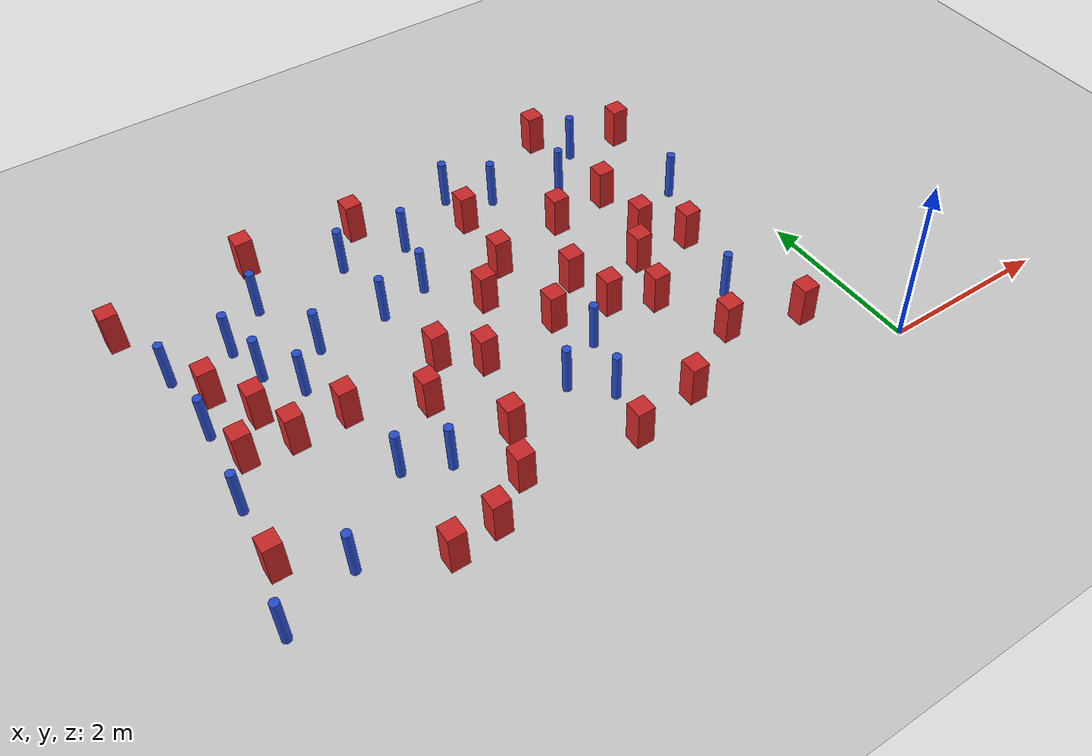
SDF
<sdf version="1.6">
 <world name="default">
  <model name="ground_plane">
   <static>1</static>
   <link name="link">
    <collision name="collision">
     <geometry><plane><normal>0 0 1</normal><size>100 100</size></plane></geometry>
     <surface><friction><ode><mu>100</mu><mu2>50</mu2></ode></friction></surface>
    </collision>
    <visual name="visual">
     <cast_shadows>0</cast_shadows>
     <geometry><plane><normal>0 0 1</normal><size>100 100</size></plane></geometry>
     <material>
      <ambient>1.0 1.0 1.0 1.0</ambient>
      <diffuse>0.8 0.8 0.8 1.0</diffuse>
      <specular>0.01 0.01 0.01 1.000000</specular>
     </material>
    </visual>
   </link>
  </model>
  <model name="square_post_obstacle0">
   <static>true</static>
   <pose>-2.0788386926 3.51990185441 1.91545236811e-07 -7.35059704564e-06 1.12565212e-07 2.39332434364e-05</pose>
   <link name="link">
    <pose>0 0 0.25 0 -0 0</pose>
    <inertial>
     <mass>100</mass>
     <inertia>
      <ixx>0.166667</ixx>
      <ixy>0</ixy>
      <ixz>0</ixz>
      <iyy>0.166667</iyy>
      <iyz>0</iyz>
      <izz>0.166667</izz>
     </inertia>
    </inertial>
    <collision name="collision"><geometry><box><size>.2 .2 .5</size></box></geometry></collision>
    <visual name="visual">
     <geometry><box><size>.2 .2 .5</size></box></geometry>
     <material>
      <script><name>Gazebo/Red</name><uri>file://media/materials/scripts/gazebo.material</uri></script>
     </material>
    </visual>
   </link>
  </model>
  <model name="square_post_obstacle5">
   <static>true</static>
   <pose>-3.15009402718 0.431172714896 1.91545236811e-07 -7.35059704564e-06 1.12565212e-07 2.39332434364e-05</pose>
   <link name="link">
    <pose>0 0 0.25 0 -0 0</pose>
    <inertial>
     <mass>100</mass>
     <inertia>
      <ixx>0.166667</ixx>
      <ixy>0</ixy>
      <ixz>0</ixz>
      <iyy>0.166667</iyy>
      <iyz>0</iyz>
      <izz>0.166667</izz>
     </inertia>
    </inertial>
    <collision name="collision"><geometry><box><size>.2 .2 .5</size></box></geometry></collision>
    <visual name="visual">
     <geometry><box><size>.2 .2 .5</size></box></geometry>
     <material>
      <script><name>Gazebo/Red</name><uri>file://media/materials/scripts/gazebo.material</uri></script>
     </material>
    </visual>
   </link>
  </model>
  <model name="square_post_obstacle15">
   <static>true</static>
   <pose>-2.97740192975 2.22756941772 1.91545236811e-07 -7.35059704564e-06 1.12565212e-07 2.39332434364e-05</pose>
   <link name="link">
    <pose>0 0 0.25 0 -0 0</pose>
    <inertial>
     <mass>100</mass>
     <inertia>
      <ixx>0.166667</ixx>
      <ixy>0</ixy>
      <ixz>0</ixz>
      <iyy>0.166667</iyy>
      <iyz>0</iyz>
      <izz>0.166667</izz>
     </inertia>
    </inertial>
    <collision name="collision"><geometry><box><size>.2 .2 .5</size></box></geometry></collision>
    <visual name="visual">
     <geometry><box><size>.2 .2 .5</size></box></geometry>
     <material>
      <script><name>Gazebo/Red</name><uri>file://media/materials/scripts/gazebo.material</uri></script>
     </material>
    </visual>
   </link>
  </model>
  <model name="pole_obstacle9">
   <static>true</static>
   <pose>-4.43777852764 3.35960975766 7.38925637345e-09 -8.47170692798e-08 1.24976764937e-08 -1.74513093023e-07</pose>
   <link name="link">
    <pose>0 0 0.3 0 -0 0</pose>
    <inertial>
     <mass>1</mass>
     <inertia><ixx>0.145833</ixx><ixy>0</ixy><ixz>0</ixz><iyy>0.145833</iyy><iyz>0</iyz><izz>0.125</izz></inertia>
    </inertial>
    <collision name="collision">
     <geometry><cylinder><radius>0.05</radius><length>.6</length></cylinder></geometry>
    </collision>
    <visual name="visual">
     <geometry><cylinder><radius>0.05</radius><length>.6</length></cylinder></geometry>
     <material>
      <script><name>Gazebo/Blue</name><uri>file://media/materials/scripts/gazebo.material</uri></script>
     </material>
    </visual>
   </link>
  </model>
  <model name="pole_obstacle12">
   <static>true</static>
   <pose>-5.60776020987 2.87340365903 7.38925637345e-09 -8.47170692798e-08 1.24976764937e-08 -1.74513093023e-07</pose>
   <link name="link">
    <pose>0 0 0.3 0 -0 0</pose>
    <inertial>
     <mass>1</mass>
     <inertia><ixx>0.145833</ixx><ixy>0</ixy><ixz>0</ixz><iyy>0.145833</iyy><iyz>0</iyz><izz>0.125</izz></inertia>
    </inertial>
    <collision name="collision">
     <geometry><cylinder><radius>0.05</radius><length>.6</length></cylinder></geometry>
    </collision>
    <visual name="visual">
     <geometry><cylinder><radius>0.05</radius><length>.6</length></cylinder></geometry>
     <material>
      <script><name>Gazebo/Blue</name><uri>file://media/materials/scripts/gazebo.material</uri></script>
     </material>
    </visual>
   </link>
  </model>
  <model name="square_post_obstacle21">
   <static>true</static>
   <pose>-1.89005795857 1.84791924567 1.91545236811e-07 -7.35059704564e-06 1.12565212e-07 2.39332434364e-05</pose>
   <link name="link">
    <pose>0 0 0.25 0 -0 0</pose>
    <inertial>
     <mass>100</mass>
     <inertia>
      <ixx>0.166667</ixx>
      <ixy>0</ixy>
      <ixz>0</ixz>
      <iyy>0.166667</iyy>
      <iyz>0</iyz>
      <izz>0.166667</izz>
     </inertia>
    </inertial>
    <collision name="collision"><geometry><box><size>.2 .2 .5</size></box></geometry></collision>
    <visual name="visual">
     <geometry><box><size>.2 .2 .5</size></box></geometry>
     <material>
      <script><name>Gazebo/Red</name><uri>file://media/materials/scripts/gazebo.material</uri></script>
     </material>
    </visual>
   </link>
  </model>
  <model name="pole_obstacle15">
   <static>true</static>
   <pose>-3.87481474693 3.49659423783 7.38925637345e-09 -8.471706928e-08 1.24976765098e-08 -1.74513093016e-07</pose>
   <link name="link">
    <pose>0 0 0.3 0 -0 0</pose>
    <inertial>
     <mass>1</mass>
     <inertia><ixx>0.145833</ixx><ixy>0</ixy><ixz>0</ixz><iyy>0.145833</iyy><iyz>0</iyz><izz>0.125</izz></inertia>
    </inertial>
    <collision name="collision">
     <geometry><cylinder><radius>0.05</radius><length>.6</length></cylinder></geometry>
    </collision>
    <visual name="visual">
     <geometry><cylinder><radius>0.05</radius><length>.6</length></cylinder></geometry>
     <material>
      <script><name>Gazebo/Blue</name><uri>file://media/materials/scripts/gazebo.material</uri></script>
     </material>
    </visual>
   </link>
  </model>
  <model name="square_post_obstacle26">
   <static>true</static>
   <pose>-5.35161694453 4.90478112747 1.91545236811e-07 -7.35059704564e-06 1.12565212e-07 2.39332434364e-05</pose>
   <link name="link">
    <pose>0 0 0.25 0 -0 0</pose>
    <inertial>
     <mass>100</mass>
     <inertia>
      <ixx>0.166667</ixx>
      <ixy>0</ixy>
      <ixz>0</ixz>
      <iyy>0.166667</iyy>
      <iyz>0</iyz>
      <izz>0.166667</izz>
     </inertia>
    </inertial>
    <collision name="collision"><geometry><box><size>.2 .2 .5</size></box></geometry></collision>
    <visual name="visual">
     <geometry><box><size>.2 .2 .5</size></box></geometry>
     <material>
      <script><name>Gazebo/Red</name><uri>file://media/materials/scripts/gazebo.material</uri></script>
     </material>
    </visual>
   </link>
  </model>
  <model name="pole_obstacle27">
   <static>true</static>
   <pose>-6.17206566814 0.665995876516 7.38925637345e-09 -8.47170692799e-08 1.24976765038e-08 -1.74513093018e-07</pose>
   <link name="link">
    <pose>0 0 0.3 0 -0 0</pose>
    <inertial>
     <mass>1</mass>
     <inertia><ixx>0.145833</ixx><ixy>0</ixy><ixz>0</ixz><iyy>0.145833</iyy><iyz>0</iyz><izz>0.125</izz></inertia>
    </inertial>
    <collision name="collision">
     <geometry><cylinder><radius>0.05</radius><length>.6</length></cylinder></geometry>
    </collision>
    <visual name="visual">
     <geometry><cylinder><radius>0.05</radius><length>.6</length></cylinder></geometry>
     <material>
      <script><name>Gazebo/Blue</name><uri>file://media/materials/scripts/gazebo.material</uri></script>
     </material>
    </visual>
   </link>
  </model>
  <model name="square_post_obstacle32">
   <static>true</static>
   <pose>-2.93864829713 4.14911817699 1.91545236811e-07 -7.35059704564e-06 1.12565212e-07 2.39332434364e-05</pose>
   <link name="link">
    <pose>0 0 0.25 0 -0 0</pose>
    <inertial>
     <mass>100</mass>
     <inertia>
      <ixx>0.166667</ixx>
      <ixy>0</ixy>
      <ixz>0</ixz>
      <iyy>0.166667</iyy>
      <iyz>0</iyz>
      <izz>0.166667</izz>
     </inertia>
    </inertial>
    <collision name="collision"><geometry><box><size>.2 .2 .5</size></box></geometry></collision>
    <visual name="visual">
     <geometry><box><size>.2 .2 .5</size></box></geometry>
     <material>
      <script><name>Gazebo/Red</name><uri>file://media/materials/scripts/gazebo.material</uri></script>
     </material>
    </visual>
   </link>
  </model>
  <model name="pole_obstacle36">
   <static>true</static>
   <pose>-3.37634958448 1.38578737526 7.38925637345e-09 -8.471706928e-08 1.24976765152e-08 -1.74513093012e-07</pose>
   <link name="link">
    <pose>0 0 0.3 0 -0 0</pose>
    <inertial>
     <mass>1</mass>
     <inertia><ixx>0.145833</ixx><ixy>0</ixy><ixz>0</ixz><iyy>0.145833</iyy><iyz>0</iyz><izz>0.125</izz></inertia>
    </inertial>
    <collision name="collision">
     <geometry><cylinder><radius>0.05</radius><length>.6</length></cylinder></geometry>
    </collision>
    <visual name="visual">
     <geometry><cylinder><radius>0.05</radius><length>.6</length></cylinder></geometry>
     <material>
      <script><name>Gazebo/Blue</name><uri>file://media/materials/scripts/gazebo.material</uri></script>
     </material>
    </visual>
   </link>
  </model>
  <model name="square_post_obstacle36">
   <static>true</static>
   <pose>-4.3939298303 0.643161265851 1.91545236811e-07 -7.35059704564e-06 1.12565212e-07 2.39332434364e-05</pose>
   <link name="link">
    <pose>0 0 0.25 0 -0 0</pose>
    <inertial>
     <mass>100</mass>
     <inertia>
      <ixx>0.166667</ixx>
      <ixy>0</ixy>
      <ixz>0</ixz>
      <iyy>0.166667</iyy>
      <iyz>0</iyz>
      <izz>0.166667</izz>
     </inertia>
    </inertial>
    <collision name="collision"><geometry><box><size>.2 .2 .5</size></box></geometry></collision>
    <visual name="visual">
     <geometry><box><size>.2 .2 .5</size></box></geometry>
     <material>
      <script><name>Gazebo/Red</name><uri>file://media/materials/scripts/gazebo.material</uri></script>
     </material>
    </visual>
   </link>
  </model>
  <model name="square_post_obstacle39">
   <static>true</static>
   <pose>-1.48181132432 4.9781287102 1.91545236811e-07 -7.35059704564e-06 1.12565212e-07 2.39332434364e-05</pose>
   <link name="link">
    <pose>0 0 0.25 0 -0 0</pose>
    <inertial>
     <mass>100</mass>
     <inertia>
      <ixx>0.166667</ixx>
      <ixy>0</ixy>
      <ixz>0</ixz>
      <iyy>0.166667</iyy>
      <iyz>0</iyz>
      <izz>0.166667</izz>
     </inertia>
    </inertial>
    <collision name="collision"><geometry><box><size>.2 .2 .5</size></box></geometry></collision>
    <visual name="visual">
     <geometry><box><size>.2 .2 .5</size></box></geometry>
     <material>
      <script><name>Gazebo/Red</name><uri>file://media/materials/scripts/gazebo.material</uri></script>
     </material>
    </visual>
   </link>
  </model>
  <model name="pole_obstacle39">
   <static>true</static>
   <pose>-2.92828843975 4.661589057 7.38925637345e-09 -8.47170692798e-08 1.24976765033e-08 -1.74513093019e-07</pose>
   <link name="link">
    <pose>0 0 0.3 0 -0 0</pose>
    <inertial>
     <mass>1</mass>
     <inertia><ixx>0.145833</ixx><ixy>0</ixy><ixz>0</ixz><iyy>0.145833</iyy><iyz>0</iyz><izz>0.125</izz></inertia>
    </inertial>
    <collision name="collision">
     <geometry><cylinder><radius>0.05</radius><length>.6</length></cylinder></geometry>
    </collision>
    <visual name="visual">
     <geometry><cylinder><radius>0.05</radius><length>.6</length></cylinder></geometry>
     <material>
      <script><name>Gazebo/Blue</name><uri>file://media/materials/scripts/gazebo.material</uri></script>
     </material>
    </visual>
   </link>
  </model>
  <model name="pole_obstacle44">
   <static>true</static>
   <pose>-4.46295803288 4.29784023895 7.38925637345e-09 -8.47170692796e-08 1.24976764786e-08 -1.74513093032e-07</pose>
   <link name="link">
    <pose>0 0 0.3 0 -0 0</pose>
    <inertial>
     <mass>1</mass>
     <inertia><ixx>0.145833</ixx><ixy>0</ixy><ixz>0</ixz><iyy>0.145833</iyy><iyz>0</iyz><izz>0.125</izz></inertia>
    </inertial>
    <collision name="collision">
     <geometry><cylinder><radius>0.05</radius><length>.6</length></cylinder></geometry>
    </collision>
    <visual name="visual">
     <geometry><cylinder><radius>0.05</radius><length>.6</length></cylinder></geometry>
     <material>
      <script><name>Gazebo/Blue</name><uri>file://media/materials/scripts/gazebo.material</uri></script>
     </material>
    </visual>
   </link>
  </model>
  <model name="square_post_obstacle46">
   <static>true</static>
   <pose>-2.37031426812 0.576771087767 1.91545236811e-07 -7.35059704564e-06 1.12565212e-07 2.39332434364e-05</pose>
   <link name="link">
    <pose>0 0 0.25 0 -0 0</pose>
    <inertial>
     <mass>100</mass>
     <inertia>
      <ixx>0.166667</ixx>
      <ixy>0</ixy>
      <ixz>0</ixz>
      <iyy>0.166667</iyy>
      <iyz>0</iyz>
      <izz>0.166667</izz>
     </inertia>
    </inertial>
    <collision name="collision"><geometry><box><size>.2 .2 .5</size></box></geometry></collision>
    <visual name="visual">
     <geometry><box><size>.2 .2 .5</size></box></geometry>
     <material>
      <script><name>Gazebo/Red</name><uri>file://media/materials/scripts/gazebo.material</uri></script>
     </material>
    </visual>
   </link>
  </model>
  <model name="square_post_obstacle56">
   <static>true</static>
   <pose>-5.97337149902 2.29753610033 1.91545236811e-07 -7.35059704564e-06 1.12565212e-07 2.39332434364e-05</pose>
   <link name="link">
    <pose>0 0 0.25 0 -0 0</pose>
    <inertial>
     <mass>100</mass>
     <inertia>
      <ixx>0.166667</ixx>
      <ixy>0</ixy>
      <ixz>0</ixz>
      <iyy>0.166667</iyy>
      <iyz>0</iyz>
      <izz>0.166667</izz>
     </inertia>
    </inertial>
    <collision name="collision"><geometry><box><size>.2 .2 .5</size></box></geometry></collision>
    <visual name="visual">
     <geometry><box><size>.2 .2 .5</size></box></geometry>
     <material>
      <script><name>Gazebo/Red</name><uri>file://media/materials/scripts/gazebo.material</uri></script>
     </material>
    </visual>
   </link>
  </model>
  <model name="pole_obstacle53">
   <static>true</static>
   <pose>-6.70213673022 3.76641503206 7.38925637345e-09 -8.47170692798e-08 1.24976764937e-08 -1.74513093023e-07</pose>
   <link name="link">
    <pose>0 0 0.3 0 -0 0</pose>
    <inertial>
     <mass>1</mass>
     <inertia><ixx>0.145833</ixx><ixy>0</ixy><ixz>0</ixz><iyy>0.145833</iyy><iyz>0</iyz><izz>0.125</izz></inertia>
    </inertial>
    <collision name="collision">
     <geometry><cylinder><radius>0.05</radius><length>.6</length></cylinder></geometry>
    </collision>
    <visual name="visual">
     <geometry><cylinder><radius>0.05</radius><length>.6</length></cylinder></geometry>
     <material>
      <script><name>Gazebo/Blue</name><uri>file://media/materials/scripts/gazebo.material</uri></script>
     </material>
    </visual>
   </link>
  </model>
  <model name="square_post_obstacle61">
   <static>true</static>
   <pose>-1.53680280742 1.05163356665 1.91545236811e-07 -7.35059704564e-06 1.12565212e-07 2.39332434364e-05</pose>
   <link name="link">
    <pose>0 0 0.25 0 -0 0</pose>
    <inertial>
     <mass>100</mass>
     <inertia>
      <ixx>0.166667</ixx>
      <ixy>0</ixy>
      <ixz>0</ixz>
      <iyy>0.166667</iyy>
      <iyz>0</iyz>
      <izz>0.166667</izz>
     </inertia>
    </inertial>
    <collision name="collision"><geometry><box><size>.2 .2 .5</size></box></geometry></collision>
    <visual name="visual">
     <geometry><box><size>.2 .2 .5</size></box></geometry>
     <material>
      <script><name>Gazebo/Red</name><uri>file://media/materials/scripts/gazebo.material</uri></script>
     </material>
    </visual>
   </link>
  </model>
  <model name="pole_obstacle58">
   <static>true</static>
   <pose>-1.67661485518 4.09693031619 7.38925637345e-09 -8.47170692799e-08 1.24976765033e-08 -1.74513093018e-07</pose>
   <link name="link">
    <pose>0 0 0.3 0 -0 0</pose>
    <inertial>
     <mass>1</mass>
     <inertia><ixx>0.145833</ixx><ixy>0</ixy><ixz>0</ixz><iyy>0.145833</iyy><iyz>0</iyz><izz>0.125</izz></inertia>
    </inertial>
    <collision name="collision">
     <geometry><cylinder><radius>0.05</radius><length>.6</length></cylinder></geometry>
    </collision>
    <visual name="visual">
     <geometry><cylinder><radius>0.05</radius><length>.6</length></cylinder></geometry>
     <material>
      <script><name>Gazebo/Blue</name><uri>file://media/materials/scripts/gazebo.material</uri></script>
     </material>
    </visual>
   </link>
  </model>
  <model name="pole_obstacle62">
   <static>true</static>
   <pose>-6.97689643283 0.389306891371 7.38925637345e-09 -8.47170692798e-08 1.24976765003e-08 -1.7451309302e-07</pose>
   <link name="link">
    <pose>0 0 0.3 0 -0 0</pose>
    <inertial>
     <mass>1</mass>
     <inertia><ixx>0.145833</ixx><ixy>0</ixy><ixz>0</ixz><iyy>0.145833</iyy><iyz>0</iyz><izz>0.125</izz></inertia>
    </inertial>
    <collision name="collision">
     <geometry><cylinder><radius>0.05</radius><length>.6</length></cylinder></geometry>
    </collision>
    <visual name="visual">
     <geometry><cylinder><radius>0.05</radius><length>.6</length></cylinder></geometry>
     <material>
      <script><name>Gazebo/Blue</name><uri>file://media/materials/scripts/gazebo.material</uri></script>
     </material>
    </visual>
   </link>
  </model>
  <model name="square_post_obstacle73">
   <static>true</static>
   <pose>-6.47840363882 2.37284517514 1.91545236811e-07 -7.35059704564e-06 1.12565212e-07 2.39332434364e-05</pose>
   <link name="link">
    <pose>0 0 0.25 0 -0 0</pose>
    <inertial>
     <mass>100</mass>
     <inertia>
      <ixx>0.166667</ixx>
      <ixy>0</ixy>
      <ixz>0</ixz>
      <iyy>0.166667</iyy>
      <iyz>0</iyz>
      <izz>0.166667</izz>
     </inertia>
    </inertial>
    <collision name="collision"><geometry><box><size>.2 .2 .5</size></box></geometry></collision>
    <visual name="visual">
     <geometry><box><size>.2 .2 .5</size></box></geometry>
     <material>
      <script><name>Gazebo/Red</name><uri>file://media/materials/scripts/gazebo.material</uri></script>
     </material>
    </visual>
   </link>
  </model>
  <model name="square_post_obstacle74">
   <static>true</static>
   <pose>-4.28874255128 2.44807260338 1.91545236811e-07 -7.35059704564e-06 1.12565212e-07 2.39332434364e-05</pose>
   <link name="link">
    <pose>0 0 0.25 0 -0 0</pose>
    <inertial>
     <mass>100</mass>
     <inertia>
      <ixx>0.166667</ixx>
      <ixy>0</ixy>
      <ixz>0</ixz>
      <iyy>0.166667</iyy>
      <iyz>0</iyz>
      <izz>0.166667</izz>
     </inertia>
    </inertial>
    <collision name="collision"><geometry><box><size>.2 .2 .5</size></box></geometry></collision>
    <visual name="visual">
     <geometry><box><size>.2 .2 .5</size></box></geometry>
     <material>
      <script><name>Gazebo/Red</name><uri>file://media/materials/scripts/gazebo.material</uri></script>
     </material>
    </visual>
   </link>
  </model>
  <model name="pole_obstacle75">
   <static>true</static>
   <pose>-5.52735862987 4.21523077751 7.38925637345e-09 -8.47170692796e-08 1.24976764786e-08 -1.74513093032e-07</pose>
   <link name="link">
    <pose>0 0 0.3 0 -0 0</pose>
    <inertial>
     <mass>1</mass>
     <inertia><ixx>0.145833</ixx><ixy>0</ixy><ixz>0</ixz><iyy>0.145833</iyy><iyz>0</iyz><izz>0.125</izz></inertia>
    </inertial>
    <collision name="collision">
     <geometry><cylinder><radius>0.05</radius><length>.6</length></cylinder></geometry>
    </collision>
    <visual name="visual">
     <geometry><cylinder><radius>0.05</radius><length>.6</length></cylinder></geometry>
     <material>
      <script><name>Gazebo/Blue</name><uri>file://media/materials/scripts/gazebo.material</uri></script>
     </material>
    </visual>
   </link>
  </model>
  <model name="square_post_obstacle79">
   <static>true</static>
   <pose>-0.54347139013 4.50416707764 1.91545236811e-07 -7.35059704564e-06 1.12565212e-07 2.39332434364e-05</pose>
   <link name="link">
    <pose>0 0 0.25 0 -0 0</pose>
    <inertial>
     <mass>100</mass>
     <inertia>
      <ixx>0.166667</ixx>
      <ixy>0</ixy>
      <ixz>0</ixz>
      <iyy>0.166667</iyy>
      <iyz>0</iyz>
      <izz>0.166667</izz>
     </inertia>
    </inertial>
    <collision name="collision"><geometry><box><size>.2 .2 .5</size></box></geometry></collision>
    <visual name="visual">
     <geometry><box><size>.2 .2 .5</size></box></geometry>
     <material>
      <script><name>Gazebo/Red</name><uri>file://media/materials/scripts/gazebo.material</uri></script>
     </material>
    </visual>
   </link>
  </model>
  <model name="pole_obstacle89">
   <static>true</static>
   <pose>-5.30793893598 1.3982674629 7.38925637345e-09 -8.471706928e-08 1.24976765134e-08 -1.74513093015e-07</pose>
   <link name="link">
    <pose>0 0 0.3 0 -0 0</pose>
    <inertial>
     <mass>1</mass>
     <inertia><ixx>0.145833</ixx><ixy>0</ixy><ixz>0</ixz><iyy>0.145833</iyy><iyz>0</iyz><izz>0.125</izz></inertia>
    </inertial>
    <collision name="collision">
     <geometry><cylinder><radius>0.05</radius><length>.6</length></cylinder></geometry>
    </collision>
    <visual name="visual">
     <geometry><cylinder><radius>0.05</radius><length>.6</length></cylinder></geometry>
     <material>
      <script><name>Gazebo/Blue</name><uri>file://media/materials/scripts/gazebo.material</uri></script>
     </material>
    </visual>
   </link>
  </model>
  <model name="pole_obstacle95">
   <static>true</static>
   <pose>-3.02015909037 1.01647949326 7.38925637345e-09 -8.47170692793e-08 1.2497676438e-08 -1.74513093043e-07</pose>
   <link name="link">
    <pose>0 0 0.3 0 -0 0</pose>
    <inertial>
     <mass>1</mass>
     <inertia><ixx>0.145833</ixx><ixy>0</ixy><ixz>0</ixz><iyy>0.145833</iyy><iyz>0</iyz><izz>0.125</izz></inertia>
    </inertial>
    <collision name="collision">
     <geometry><cylinder><radius>0.05</radius><length>.6</length></cylinder></geometry>
    </collision>
    <visual name="visual">
     <geometry><cylinder><radius>0.05</radius><length>.6</length></cylinder></geometry>
     <material>
      <script><name>Gazebo/Blue</name><uri>file://media/materials/scripts/gazebo.material</uri></script>
     </material>
    </visual>
   </link>
  </model>
  <model name="square_post_obstacle85">
   <static>true</static>
   <pose>-4.08175941229 4.76768794901 1.91545236811e-07 -7.35059704564e-06 1.12565212e-07 2.39332434364e-05</pose>
   <link name="link">
    <pose>0 0 0.25 0 -0 0</pose>
    <inertial>
     <mass>100</mass>
     <inertia>
      <ixx>0.166667</ixx>
      <ixy>0</ixy>
      <ixz>0</ixz>
      <iyy>0.166667</iyy>
      <iyz>0</iyz>
      <izz>0.166667</izz>
     </inertia>
    </inertial>
    <collision name="collision"><geometry><box><size>.2 .2 .5</size></box></geometry></collision>
    <visual name="visual">
     <geometry><box><size>.2 .2 .5</size></box></geometry>
     <material>
      <script><name>Gazebo/Red</name><uri>file://media/materials/scripts/gazebo.material</uri></script>
     </material>
    </visual>
   </link>
  </model>
  <model name="square_post_obstacle90">
   <static>true</static>
   <pose>-1.37208795451 3.62086848564 1.91545236811e-07 -7.35059704564e-06 1.12565212e-07 2.39332434364e-05</pose>
   <link name="link">
    <pose>0 0 0.25 0 -0 0</pose>
    <inertial>
     <mass>100</mass>
     <inertia>
      <ixx>0.166667</ixx>
      <ixy>0</ixy>
      <ixz>0</ixz>
      <iyy>0.166667</iyy>
      <iyz>0</iyz>
      <izz>0.166667</izz>
     </inertia>
    </inertial>
    <collision name="collision"><geometry><box><size>.2 .2 .5</size></box></geometry></collision>
    <visual name="visual">
     <geometry><box><size>.2 .2 .5</size></box></geometry>
     <material>
      <script><name>Gazebo/Red</name><uri>file://media/materials/scripts/gazebo.material</uri></script>
     </material>
    </visual>
   </link>
  </model>
  <model name="square_post_obstacle101">
   <static>true</static>
   <pose>-0.708535437977 0.791151154313 1.91545236811e-07 -7.35059704564e-06 1.12565212e-07 2.39332434364e-05</pose>
   <link name="link">
    <pose>0 0 0.25 0 -0 0</pose>
    <inertial>
     <mass>100</mass>
     <inertia>
      <ixx>0.166667</ixx>
      <ixy>0</ixy>
      <ixz>0</ixz>
      <iyy>0.166667</iyy>
      <iyz>0</iyz>
      <izz>0.166667</izz>
     </inertia>
    </inertial>
    <collision name="collision"><geometry><box><size>.2 .2 .5</size></box></geometry></collision>
    <visual name="visual">
     <geometry><box><size>.2 .2 .5</size></box></geometry>
     <material>
      <script><name>Gazebo/Red</name><uri>file://media/materials/scripts/gazebo.material</uri></script>
     </material>
    </visual>
   </link>
  </model>
  <model name="square_post_obstacle108">
   <static>true</static>
   <pose>-5.39723187414 2.30531666637 1.91545236811e-07 -7.35059704564e-06 1.12565212e-07 2.39332434364e-05</pose>
   <link name="link">
    <pose>0 0 0.25 0 -0 0</pose>
    <inertial>
     <mass>100</mass>
     <inertia>
      <ixx>0.166667</ixx>
      <ixy>0</ixy>
      <ixz>0</ixz>
      <iyy>0.166667</iyy>
      <iyz>0</iyz>
      <izz>0.166667</izz>
     </inertia>
    </inertial>
    <collision name="collision"><geometry><box><size>.2 .2 .5</size></box></geometry></collision>
    <visual name="visual">
     <geometry><box><size>.2 .2 .5</size></box></geometry>
     <material>
      <script><name>Gazebo/Red</name><uri>file://media/materials/scripts/gazebo.material</uri></script>
     </material>
    </visual>
   </link>
  </model>
  <model name="pole_obstacle120">
   <static>true</static>
   <pose>-1.17079956065 1.54534362305 7.38925637345e-09 -8.471706928e-08 1.24976765079e-08 -1.74513093017e-07</pose>
   <link name="link">
    <pose>0 0 0.3 0 -0 0</pose>
    <inertial>
     <mass>1</mass>
     <inertia><ixx>0.145833</ixx><ixy>0</ixy><ixz>0</ixz><iyy>0.145833</iyy><iyz>0</iyz><izz>0.125</izz></inertia>
    </inertial>
    <collision name="collision">
     <geometry><cylinder><radius>0.05</radius><length>.6</length></cylinder></geometry>
    </collision>
    <visual name="visual">
     <geometry><cylinder><radius>0.05</radius><length>.6</length></cylinder></geometry>
     <material>
      <script><name>Gazebo/Blue</name><uri>file://media/materials/scripts/gazebo.material</uri></script>
     </material>
    </visual>
   </link>
  </model>
  <model name="pole_obstacle129">
   <static>true</static>
   <pose>-2.79904458776 1.73741173341 7.38925637345e-09 -8.471706928e-08 1.24976765152e-08 -1.74513093012e-07</pose>
   <link name="link">
    <pose>0 0 0.3 0 -0 0</pose>
    <inertial>
     <mass>1</mass>
     <inertia><ixx>0.145833</ixx><ixy>0</ixy><ixz>0</ixz><iyy>0.145833</iyy><iyz>0</iyz><izz>0.125</izz></inertia>
    </inertial>
    <collision name="collision">
     <geometry><cylinder><radius>0.05</radius><length>.6</length></cylinder></geometry>
    </collision>
    <visual name="visual">
     <geometry><cylinder><radius>0.05</radius><length>.6</length></cylinder></geometry>
     <material>
      <script><name>Gazebo/Blue</name><uri>file://media/materials/scripts/gazebo.material</uri></script>
     </material>
    </visual>
   </link>
  </model>
  <model name="pole_obstacle131">
   <static>true</static>
   <pose>-4.84546187899 1.18723279436 7.38925637345e-09 -8.471706928e-08 1.24976765134e-08 -1.74513093015e-07</pose>
   <link name="link">
    <pose>0 0 0.3 0 -0 0</pose>
    <inertial>
     <mass>1</mass>
     <inertia><ixx>0.145833</ixx><ixy>0</ixy><ixz>0</ixz><iyy>0.145833</iyy><iyz>0</iyz><izz>0.125</izz></inertia>
    </inertial>
    <collision name="collision">
     <geometry><cylinder><radius>0.05</radius><length>.6</length></cylinder></geometry>
    </collision>
    <visual name="visual">
     <geometry><cylinder><radius>0.05</radius><length>.6</length></cylinder></geometry>
     <material>
      <script><name>Gazebo/Blue</name><uri>file://media/materials/scripts/gazebo.material</uri></script>
     </material>
    </visual>
   </link>
  </model>
  <model name="pole_obstacle132">
   <static>true</static>
   <pose>-6.01234559861 3.79820238406 7.38925637345e-09 -8.47170692798e-08 1.24976764937e-08 -1.74513093023e-07</pose>
   <link name="link">
    <pose>0 0 0.3 0 -0 0</pose>
    <inertial>
     <mass>1</mass>
     <inertia><ixx>0.145833</ixx><ixy>0</ixy><ixz>0</ixz><iyy>0.145833</iyy><iyz>0</iyz><izz>0.125</izz></inertia>
    </inertial>
    <collision name="collision">
     <geometry><cylinder><radius>0.05</radius><length>.6</length></cylinder></geometry>
    </collision>
    <visual name="visual">
     <geometry><cylinder><radius>0.05</radius><length>.6</length></cylinder></geometry>
     <material>
      <script><name>Gazebo/Blue</name><uri>file://media/materials/scripts/gazebo.material</uri></script>
     </material>
    </visual>
   </link>
  </model>
  <model name="pole_obstacle133">
   <static>true</static>
   <pose>-3.72057758667 4.20567666945 7.38925637345e-09 -8.47170692798e-08 1.24976765033e-08 -1.74513093019e-07</pose>
   <link name="link">
    <pose>0 0 0.3 0 -0 0</pose>
    <inertial>
     <mass>1</mass>
     <inertia><ixx>0.145833</ixx><ixy>0</ixy><ixz>0</ixz><iyy>0.145833</iyy><iyz>0</iyz><izz>0.125</izz></inertia>
    </inertial>
    <collision name="collision">
     <geometry><cylinder><radius>0.05</radius><length>.6</length></cylinder></geometry>
    </collision>
    <visual name="visual">
     <geometry><cylinder><radius>0.05</radius><length>.6</length></cylinder></geometry>
     <material>
      <script><name>Gazebo/Blue</name><uri>file://media/materials/scripts/gazebo.material</uri></script>
     </material>
    </visual>
   </link>
  </model>
  <model name="square_post_obstacle126">
   <static>true</static>
   <pose>-4.65552211117 1.96336725288 1.91545236811e-07 -7.35059704564e-06 1.12565212e-07 2.39332434364e-05</pose>
   <link name="link">
    <pose>0 0 0.25 0 -0 0</pose>
    <inertial>
     <mass>100</mass>
     <inertia>
      <ixx>0.166667</ixx>
      <ixy>0</ixy>
      <ixz>0</ixz>
      <iyy>0.166667</iyy>
      <iyz>0</iyz>
      <izz>0.166667</izz>
     </inertia>
    </inertial>
    <collision name="collision"><geometry><box><size>.2 .2 .5</size></box></geometry></collision>
    <visual name="visual">
     <geometry><box><size>.2 .2 .5</size></box></geometry>
     <material>
      <script><name>Gazebo/Red</name><uri>file://media/materials/scripts/gazebo.material</uri></script>
     </material>
    </visual>
   </link>
  </model>
  <model name="square_post_obstacle127">
   <static>true</static>
   <pose>-6.75400870095 1.06617255713 1.91545236811e-07 -7.35059704564e-06 1.12565212e-07 2.39332434364e-05</pose>
   <link name="link">
    <pose>0 0 0.25 0 -0 0</pose>
    <inertial>
     <mass>100</mass>
     <inertia>
      <ixx>0.166667</ixx>
      <ixy>0</ixy>
      <ixz>0</ixz>
      <iyy>0.166667</iyy>
      <iyz>0</iyz>
      <izz>0.166667</izz>
     </inertia>
    </inertial>
    <collision name="collision"><geometry><box><size>.2 .2 .5</size></box></geometry></collision>
    <visual name="visual">
     <geometry><box><size>.2 .2 .5</size></box></geometry>
     <material>
      <script><name>Gazebo/Red</name><uri>file://media/materials/scripts/gazebo.material</uri></script>
     </material>
    </visual>
   </link>
  </model>
  <model name="pole_obstacle142">
   <static>true</static>
   <pose>-1.20869760824 4.54574290457 7.38925637345e-09 -8.47170692799e-08 1.24976765033e-08 -1.74513093018e-07</pose>
   <link name="link">
    <pose>0 0 0.3 0 -0 0</pose>
    <inertial>
     <mass>1</mass>
     <inertia><ixx>0.145833</ixx><ixy>0</ixy><ixz>0</ixz><iyy>0.145833</iyy><iyz>0</iyz><izz>0.125</izz></inertia>
    </inertial>
    <collision name="collision">
     <geometry><cylinder><radius>0.05</radius><length>.6</length></cylinder></geometry>
    </collision>
    <visual name="visual">
     <geometry><cylinder><radius>0.05</radius><length>.6</length></cylinder></geometry>
     <material>
      <script><name>Gazebo/Blue</name><uri>file://media/materials/scripts/gazebo.material</uri></script>
     </material>
    </visual>
   </link>
  </model>
  <model name="square_post_obstacle146">
   <static>true</static>
   <pose>-1.67462087841 2.467965764 1.91545236811e-07 -7.35059704564e-06 1.12565212e-07 2.39332434364e-05</pose>
   <link name="link">
    <pose>0 0 0.25 0 -0 0</pose>
    <inertial>
     <mass>100</mass>
     <inertia>
      <ixx>0.166667</ixx>
      <ixy>0</ixy>
      <ixz>0</ixz>
      <iyy>0.166667</iyy>
      <iyz>0</iyz>
      <izz>0.166667</izz>
     </inertia>
    </inertial>
    <collision name="collision"><geometry><box><size>.2 .2 .5</size></box></geometry></collision>
    <visual name="visual">
     <geometry><box><size>.2 .2 .5</size></box></geometry>
     <material>
      <script><name>Gazebo/Red</name><uri>file://media/materials/scripts/gazebo.material</uri></script>
     </material>
    </visual>
   </link>
  </model>
  <model name="pole_obstacle162">
   <static>true</static>
   <pose>-6.7421640012 1.85503573863 7.38925637345e-09 -8.471706928e-08 1.24976765134e-08 -1.74513093015e-07</pose>
   <link name="link">
    <pose>0 0 0.3 0 -0 0</pose>
    <inertial>
     <mass>1</mass>
     <inertia><ixx>0.145833</ixx><ixy>0</ixy><ixz>0</ixz><iyy>0.145833</iyy><iyz>0</iyz><izz>0.125</izz></inertia>
    </inertial>
    <collision name="collision">
     <geometry><cylinder><radius>0.05</radius><length>.6</length></cylinder></geometry>
    </collision>
    <visual name="visual">
     <geometry><cylinder><radius>0.05</radius><length>.6</length></cylinder></geometry>
     <material>
      <script><name>Gazebo/Blue</name><uri>file://media/materials/scripts/gazebo.material</uri></script>
     </material>
    </visual>
   </link>
  </model>
  <model name="square_post_obstacle155">
   <static>true</static>
   <pose>-3.8990983684 2.1161956469 1.91545236811e-07 -7.35059704564e-06 1.12565212e-07 2.39332434364e-05</pose>
   <link name="link">
    <pose>0 0 0.25 0 -0 0</pose>
    <inertial>
     <mass>100</mass>
     <inertia>
      <ixx>0.166667</ixx>
      <ixy>0</ixy>
      <ixz>0</ixz>
      <iyy>0.166667</iyy>
      <iyz>0</iyz>
      <izz>0.166667</izz>
     </inertia>
    </inertial>
    <collision name="collision"><geometry><box><size>.2 .2 .5</size></box></geometry></collision>
    <visual name="visual">
     <geometry><box><size>.2 .2 .5</size></box></geometry>
     <material>
      <script><name>Gazebo/Red</name><uri>file://media/materials/scripts/gazebo.material</uri></script>
     </material>
    </visual>
   </link>
  </model>
  <model name="square_post_obstacle161">
   <static>true</static>
   <pose>-3.00717697945 3.28352042696 1.91545236811e-07 -7.35059704564e-06 1.12565212e-07 2.39332434364e-05</pose>
   <link name="link">
    <pose>0 0 0.25 0 -0 0</pose>
    <inertial>
     <mass>100</mass>
     <inertia>
      <ixx>0.166667</ixx>
      <ixy>0</ixy>
      <ixz>0</ixz>
      <iyy>0.166667</iyy>
      <iyz>0</iyz>
      <izz>0.166667</izz>
     </inertia>
    </inertial>
    <collision name="collision"><geometry><box><size>.2 .2 .5</size></box></geometry></collision>
    <visual name="visual">
     <geometry><box><size>.2 .2 .5</size></box></geometry>
     <material>
      <script><name>Gazebo/Red</name><uri>file://media/materials/scripts/gazebo.material</uri></script>
     </material>
    </visual>
   </link>
  </model>
  <model name="pole_obstacle173">
   <static>true</static>
   <pose>-0.636032532693 3.2640355186 7.38925637345e-09 -8.47170692799e-08 1.2497676509e-08 -1.74513093016e-07</pose>
   <link name="link">
    <pose>0 0 0.3 0 -0 0</pose>
    <inertial>
     <mass>1</mass>
     <inertia><ixx>0.145833</ixx><ixy>0</ixy><ixz>0</ixz><iyy>0.145833</iyy><iyz>0</iyz><izz>0.125</izz></inertia>
    </inertial>
    <collision name="collision">
     <geometry><cylinder><radius>0.05</radius><length>.6</length></cylinder></geometry>
    </collision>
    <visual name="visual">
     <geometry><cylinder><radius>0.05</radius><length>.6</length></cylinder></geometry>
     <material>
      <script><name>Gazebo/Blue</name><uri>file://media/materials/scripts/gazebo.material</uri></script>
     </material>
    </visual>
   </link>
  </model>
  <model name="pole_obstacle177">
   <static>true</static>
   <pose>-6.64544928781 2.87679753551 7.38925637345e-09 -8.47170692798e-08 1.24976764937e-08 -1.74513093023e-07</pose>
   <link name="link">
    <pose>0 0 0.3 0 -0 0</pose>
    <inertial>
     <mass>1</mass>
     <inertia><ixx>0.145833</ixx><ixy>0</ixy><ixz>0</ixz><iyy>0.145833</iyy><iyz>0</iyz><izz>0.125</izz></inertia>
    </inertial>
    <collision name="collision">
     <geometry><cylinder><radius>0.05</radius><length>.6</length></cylinder></geometry>
    </collision>
    <visual name="visual">
     <geometry><cylinder><radius>0.05</radius><length>.6</length></cylinder></geometry>
     <material>
      <script><name>Gazebo/Blue</name><uri>file://media/materials/scripts/gazebo.material</uri></script>
     </material>
    </visual>
   </link>
  </model>
  <model name="square_post_obstacle167">
   <static>true</static>
   <pose>-1.36422824304 2.8746205803 1.91545236811e-07 -7.35059704564e-06 1.12565212e-07 2.39332434364e-05</pose>
   <link name="link">
    <pose>0 0 0.25 0 -0 0</pose>
    <inertial>
     <mass>100</mass>
     <inertia>
      <ixx>0.166667</ixx>
      <ixy>0</ixy>
      <ixz>0</ixz>
      <iyy>0.166667</iyy>
      <iyz>0</iyz>
      <izz>0.166667</izz>
     </inertia>
    </inertial>
    <collision name="collision"><geometry><box><size>.2 .2 .5</size></box></geometry></collision>
    <visual name="visual">
     <geometry><box><size>.2 .2 .5</size></box></geometry>
     <material>
      <script><name>Gazebo/Red</name><uri>file://media/materials/scripts/gazebo.material</uri></script>
     </material>
    </visual>
   </link>
  </model>
  <model name="square_post_obstacle175">
   <static>true</static>
   <pose>-6.96517859938 4.63332978877 1.91545236811e-07 -7.35059704564e-06 1.12565212e-07 2.39332434364e-05</pose>
   <link name="link">
    <pose>0 0 0.25 0 -0 0</pose>
    <inertial>
     <mass>100</mass>
     <inertia>
      <ixx>0.166667</ixx>
      <ixy>0</ixy>
      <ixz>0</ixz>
      <iyy>0.166667</iyy>
      <iyz>0</iyz>
      <izz>0.166667</izz>
     </inertia>
    </inertial>
    <collision name="collision"><geometry><box><size>.2 .2 .5</size></box></geometry></collision>
    <visual name="visual">
     <geometry><box><size>.2 .2 .5</size></box></geometry>
     <material>
      <script><name>Gazebo/Red</name><uri>file://media/materials/scripts/gazebo.material</uri></script>
     </material>
    </visual>
   </link>
  </model>
  <model name="square_post_obstacle177">
   <static>true</static>
   <pose>-2.34962683657 2.09283470662 1.91545236811e-07 -7.35059704564e-06 1.12565212e-07 2.39332434364e-05</pose>
   <link name="link">
    <pose>0 0 0.25 0 -0 0</pose>
    <inertial>
     <mass>100</mass>
     <inertia>
      <ixx>0.166667</ixx>
      <ixy>0</ixy>
      <ixz>0</ixz>
      <iyy>0.166667</iyy>
      <iyz>0</iyz>
      <izz>0.166667</izz>
     </inertia>
    </inertial>
    <collision name="collision"><geometry><box><size>.2 .2 .5</size></box></geometry></collision>
    <visual name="visual">
     <geometry><box><size>.2 .2 .5</size></box></geometry>
     <material>
      <script><name>Gazebo/Red</name><uri>file://media/materials/scripts/gazebo.material</uri></script>
     </material>
    </visual>
   </link>
  </model>
  <model name="square_post_obstacle183">
   <static>true</static>
   <pose>-0.987687059492 2.47406746747 1.91545236811e-07 -7.35059704564e-06 1.12565212e-07 2.39332434364e-05</pose>
   <link name="link">
    <pose>0 0 0.25 0 -0 0</pose>
    <inertial>
     <mass>100</mass>
     <inertia>
      <ixx>0.166667</ixx>
      <ixy>0</ixy>
      <ixz>0</ixz>
      <iyy>0.166667</iyy>
      <iyz>0</iyz>
      <izz>0.166667</izz>
     </inertia>
    </inertial>
    <collision name="collision"><geometry><box><size>.2 .2 .5</size></box></geometry></collision>
    <visual name="visual">
     <geometry><box><size>.2 .2 .5</size></box></geometry>
     <material>
      <script><name>Gazebo/Red</name><uri>file://media/materials/scripts/gazebo.material</uri></script>
     </material>
    </visual>
   </link>
  </model>
  <model name="square_post_obstacle188">
   <static>true</static>
   <pose>-5.37028194684 0.243525806556 1.91545236811e-07 -7.35059704564e-06 1.12565212e-07 2.39332434364e-05</pose>
   <link name="link">
    <pose>0 0 0.25 0 -0 0</pose>
    <inertial>
     <mass>100</mass>
     <inertia>
      <ixx>0.166667</ixx>
      <ixy>0</ixy>
      <ixz>0</ixz>
      <iyy>0.166667</iyy>
      <iyz>0</iyz>
      <izz>0.166667</izz>
     </inertia>
    </inertial>
    <collision name="collision"><geometry><box><size>.2 .2 .5</size></box></geometry></collision>
    <visual name="visual">
     <geometry><box><size>.2 .2 .5</size></box></geometry>
     <material>
      <script><name>Gazebo/Red</name><uri>file://media/materials/scripts/gazebo.material</uri></script>
     </material>
    </visual>
   </link>
  </model>
  <model name="pole_obstacle197">
   <static>true</static>
   <pose>-5.89451627489 3.30210850306 7.38925637345e-09 -8.47170692798e-08 1.24976764937e-08 -1.74513093023e-07</pose>
   <link name="link">
    <pose>0 0 0.3 0 -0 0</pose>
    <inertial>
     <mass>1</mass>
     <inertia><ixx>0.145833</ixx><ixy>0</ixy><ixz>0</ixz><iyy>0.145833</iyy><iyz>0</iyz><izz>0.125</izz></inertia>
    </inertial>
    <collision name="collision">
     <geometry><cylinder><radius>0.05</radius><length>.6</length></cylinder></geometry>
    </collision>
    <visual name="visual">
     <geometry><cylinder><radius>0.05</radius><length>.6</length></cylinder></geometry>
     <material>
      <script><name>Gazebo/Blue</name><uri>file://media/materials/scripts/gazebo.material</uri></script>
     </material>
    </visual>
   </link>
  </model>
  <model name="square_post_obstacle196">
   <static>true</static>
   <pose>-4.16128200241 1.18829681896 1.91545236811e-07 -7.35059704564e-06 1.12565212e-07 2.39332434364e-05</pose>
   <link name="link">
    <pose>0 0 0.25 0 -0 0</pose>
    <inertial>
     <mass>100</mass>
     <inertia>
      <ixx>0.166667</ixx>
      <ixy>0</ixy>
      <ixz>0</ixz>
      <iyy>0.166667</iyy>
      <iyz>0</iyz>
      <izz>0.166667</izz>
     </inertia>
    </inertial>
    <collision name="collision"><geometry><box><size>.2 .2 .5</size></box></geometry></collision>
    <visual name="visual">
     <geometry><box><size>.2 .2 .5</size></box></geometry>
     <material>
      <script><name>Gazebo/Red</name><uri>file://media/materials/scripts/gazebo.material</uri></script>
     </material>
    </visual>
   </link>
  </model>
  <model name="pole_obstacle202">
   <static>true</static>
   <pose>-2.46648673594 4.34036548224 7.38925637345e-09 -8.47170692798e-08 1.24976765033e-08 -1.74513093019e-07</pose>
   <link name="link">
    <pose>0 0 0.3 0 -0 0</pose>
    <inertial>
     <mass>1</mass>
     <inertia><ixx>0.145833</ixx><ixy>0</ixy><ixz>0</ixz><iyy>0.145833</iyy><iyz>0</iyz><izz>0.125</izz></inertia>
    </inertial>
    <collision name="collision">
     <geometry><cylinder><radius>0.05</radius><length>.6</length></cylinder></geometry>
    </collision>
    <visual name="visual">
     <geometry><cylinder><radius>0.05</radius><length>.6</length></cylinder></geometry>
     <material>
      <script><name>Gazebo/Blue</name><uri>file://media/materials/scripts/gazebo.material</uri></script>
     </material>
    </visual>
   </link>
  </model>
  <model name="pole_obstacle205">
   <static>true</static>
   <pose>-5.22887272888 3.3095338322 7.38925637345e-09 -8.47170692798e-08 1.24976764937e-08 -1.74513093023e-07</pose>
   <link name="link">
    <pose>0 0 0.3 0 -0 0</pose>
    <inertial>
     <mass>1</mass>
     <inertia><ixx>0.145833</ixx><ixy>0</ixy><ixz>0</ixz><iyy>0.145833</iyy><iyz>0</iyz><izz>0.125</izz></inertia>
    </inertial>
    <collision name="collision">
     <geometry><cylinder><radius>0.05</radius><length>.6</length></cylinder></geometry>
    </collision>
    <visual name="visual">
     <geometry><cylinder><radius>0.05</radius><length>.6</length></cylinder></geometry>
     <material>
      <script><name>Gazebo/Blue</name><uri>file://media/materials/scripts/gazebo.material</uri></script>
     </material>
    </visual>
   </link>
  </model>
  <model name="square_post_obstacle203">
   <static>true</static>
   <pose>-4.86434451856 0.308951946775 1.91545236811e-07 -7.35059704564e-06 1.12565212e-07 2.39332434364e-05</pose>
   <link name="link">
    <pose>0 0 0.25 0 -0 0</pose>
    <inertial>
     <mass>100</mass>
     <inertia>
      <ixx>0.166667</ixx>
      <ixy>0</ixy>
      <ixz>0</ixz>
      <iyy>0.166667</iyy>
      <iyz>0</iyz>
      <izz>0.166667</izz>
     </inertia>
    </inertial>
    <collision name="collision"><geometry><box><size>.2 .2 .5</size></box></geometry></collision>
    <visual name="visual">
     <geometry><box><size>.2 .2 .5</size></box></geometry>
     <material>
      <script><name>Gazebo/Red</name><uri>file://media/materials/scripts/gazebo.material</uri></script>
     </material>
    </visual>
   </link>
  </model>
  <model name="square_post_obstacle206">
   <static>true</static>
   <pose>-6.14064129471 2.80961574262 1.91545236811e-07 -7.35059704564e-06 1.12565212e-07 2.39332434364e-05</pose>
   <link name="link">
    <pose>0 0 0.25 0 -0 0</pose>
    <inertial>
     <mass>100</mass>
     <inertia>
      <ixx>0.166667</ixx>
      <ixy>0</ixy>
      <ixz>0</ixz>
      <iyy>0.166667</iyy>
      <iyz>0</iyz>
      <izz>0.166667</izz>
     </inertia>
    </inertial>
    <collision name="collision"><geometry><box><size>.2 .2 .5</size></box></geometry></collision>
    <visual name="visual">
     <geometry><box><size>.2 .2 .5</size></box></geometry>
     <material>
      <script><name>Gazebo/Red</name><uri>file://media/materials/scripts/gazebo.material</uri></script>
     </material>
    </visual>
   </link>
  </model>
  <model name="square_post_obstacle212">
   <static>true</static>
   <pose>-3.42861559967 2.90378821724 1.91545236811e-07 -7.35059704564e-06 1.12565212e-07 2.39332434364e-05</pose>
   <link name="link">
    <pose>0 0 0.25 0 -0 0</pose>
    <inertial>
     <mass>100</mass>
     <inertia>
      <ixx>0.166667</ixx>
      <ixy>0</ixy>
      <ixz>0</ixz>
      <iyy>0.166667</iyy>
      <iyz>0</iyz>
      <izz>0.166667</izz>
     </inertia>
    </inertial>
    <collision name="collision"><geometry><box><size>.2 .2 .5</size></box></geometry></collision>
    <visual name="visual">
     <geometry><box><size>.2 .2 .5</size></box></geometry>
     <material>
      <script><name>Gazebo/Red</name><uri>file://media/materials/scripts/gazebo.material</uri></script>
     </material>
    </visual>
   </link>
  </model>
  <model name="square_post_obstacle213">
   <static>true</static>
   <pose>-6.43144074265 3.33229473217 1.91545236811e-07 -7.35059704564e-06 1.12565212e-07 2.39332434364e-05</pose>
   <link name="link">
    <pose>0 0 0.25 0 -0 0</pose>
    <inertial>
     <mass>100</mass>
     <inertia>
      <ixx>0.166667</ixx>
      <ixy>0</ixy>
      <ixz>0</ixz>
      <iyy>0.166667</iyy>
      <iyz>0</iyz>
      <izz>0.166667</izz>
     </inertia>
    </inertial>
    <collision name="collision"><geometry><box><size>.2 .2 .5</size></box></geometry></collision>
    <visual name="visual">
     <geometry><box><size>.2 .2 .5</size></box></geometry>
     <material>
      <script><name>Gazebo/Red</name><uri>file://media/materials/scripts/gazebo.material</uri></script>
     </material>
    </visual>
   </link>
  </model>
  <model name="square_post_obstacle225">
   <static>true</static>
   <pose>-2.47969433105 2.6312139993 1.91545236811e-07 -7.35059704564e-06 1.12565212e-07 2.39332434364e-05</pose>
   <link name="link">
    <pose>0 0 0.25 0 -0 0</pose>
    <inertial>
     <mass>100</mass>
     <inertia>
      <ixx>0.166667</ixx>
      <ixy>0</ixy>
      <ixz>0</ixz>
      <iyy>0.166667</iyy>
      <iyz>0</iyz>
      <izz>0.166667</izz>
     </inertia>
    </inertial>
    <collision name="collision"><geometry><box><size>.2 .2 .5</size></box></geometry></collision>
    <visual name="visual">
     <geometry><box><size>.2 .2 .5</size></box></geometry>
     <material>
      <script><name>Gazebo/Red</name><uri>file://media/materials/scripts/gazebo.material</uri></script>
     </material>
    </visual>
   </link>
  </model>
 </world>
</sdf>
